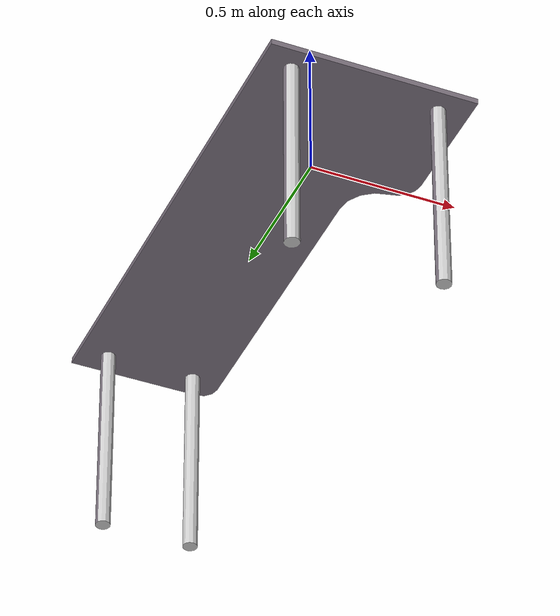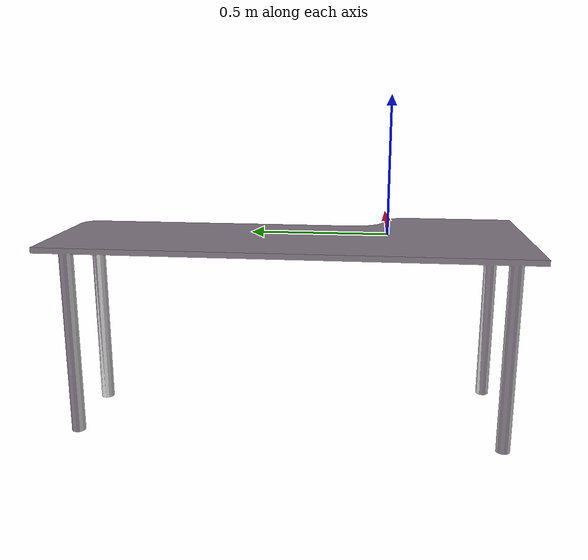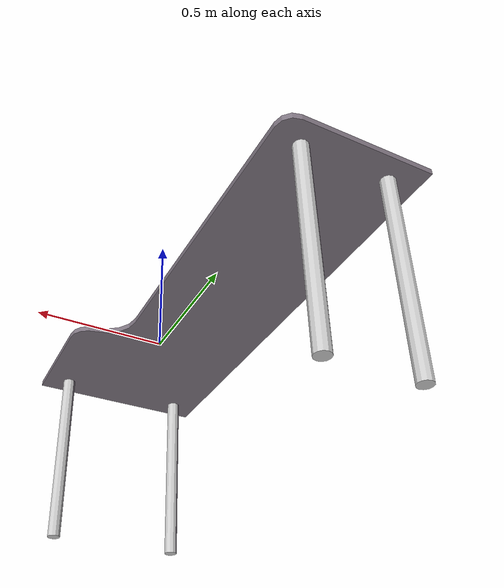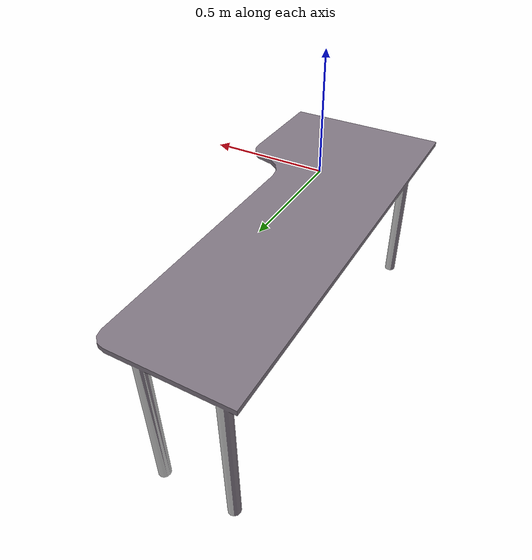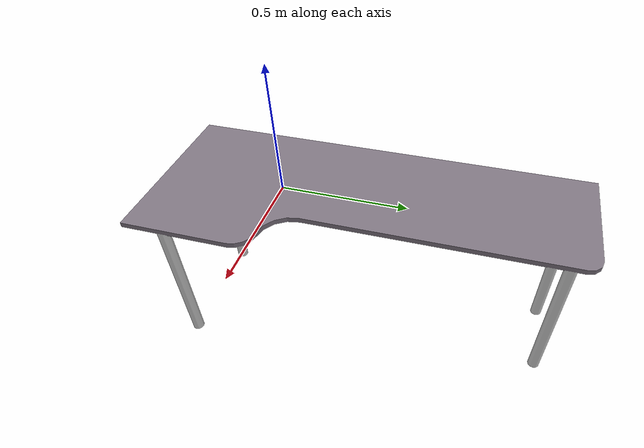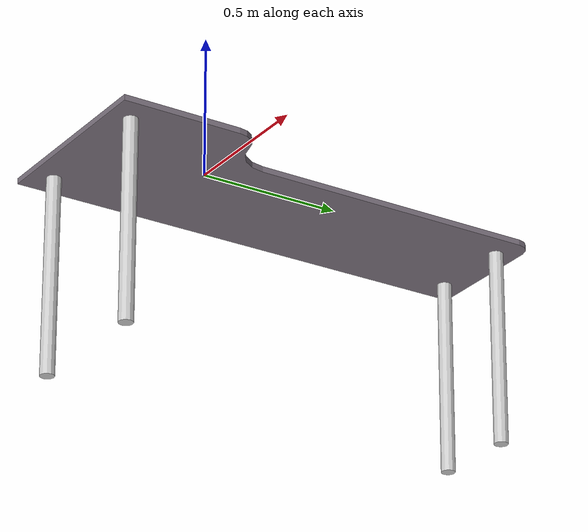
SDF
<?xml version='1.0'?>
<sdf version='1.6'>
  <model name='Desk_2_L'>
    <link name='Desk_2_L'>
      <pose frame=''>0 0 0 0 -0 0</pose>
      <inertial>
        <pose frame=''>-0.057753 0.30478 -0.089376 0 -0 0</pose>
        <mass>24.515</mass>
        <inertia>
          <ixx>8.7834</ixx>
          <ixy>0.55953</ixy>
          <ixz>0.019316</ixz>
          <iyy>1.5784</iyy>
          <iyz>-0.092859</iyz>
          <izz>8.8425</izz>
        </inertia>
      </inertial>
      <collision name='Desk_2_L_collision'>
        <pose frame=''>0 0 0 1.5708 -0 0</pose>
        <geometry>
          <mesh>
            <scale>1 1 1</scale>
            <uri>model://Desk_2_L/meshes/Desk_2_L.dae</uri>
          </mesh>
        </geometry>
      </collision>
      <visual name='Desk_2_L_visual'>
        <pose frame=''>0 0 0 1.5708 -0 0</pose>
        <geometry>
          <mesh>
            <scale>1 1 1</scale>
            <uri>model://Desk_2_L/meshes/Desk_2_L.dae</uri>
          </mesh>
        </geometry>
      </visual>
    </link>
  </model>
</sdf>
